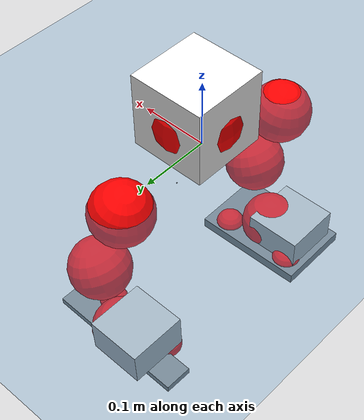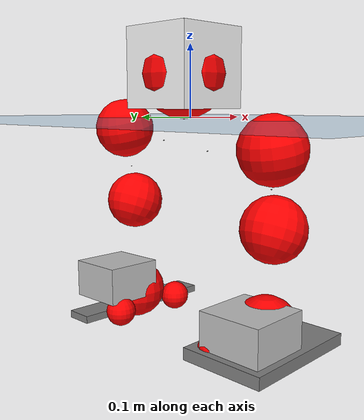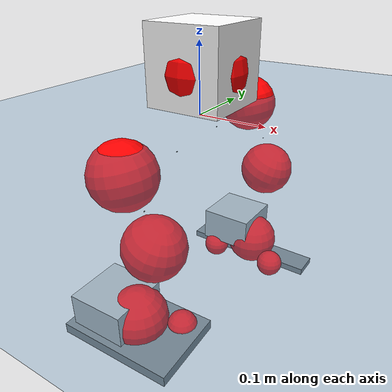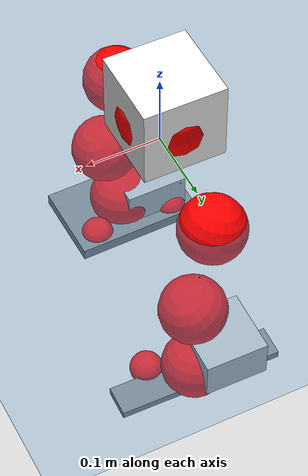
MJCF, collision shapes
<mujoco model="pi_12dof_release_v1">
  <compiler angle="radian" assetdir="assets" balanceinertia="true" inertiafromgeom="false"/>

  <option timestep="0.005" density="1.2" viscosity="2e-05"/>

  <size nkey="1"/>

  <visual>
    <quality shadowsize="8192"/>
    <map shadowclip="0.5"/>
  </visual>

  <default>
    <default class="/">
      <joint armature="0.01" damping="0.01" frictionloss="0.01"/>
      <geom contype="0" conaffinity="0" group="1" solref="-1000 -80"/>
      <site size="0.01 0.005 0.005" group="5"/>
      <general forcelimited="true" biastype="affine" gainprm="20" biasprm="0 -20 -0.5"/>
      <default class="foot">
        <geom size="0.0845 0.036 0.005" type="box" condim="6" group="4" priority="1" friction="0.9 0.2 0.2" solimp="0.015 1 0.005"/>
      </default>
      <default class="reward_collision_sphere">
        <geom group="5" rgba="1 0 0 1"/>
      </default>
    </default>
  </default>

  <asset>
    <texture type="skybox" colorspace="auto" name="//unnamed_texture_0" builtin="gradient" rgb1="0.95 0.95 0.95" rgb2="0.95 0.95 0.95" width="100" height="600"/>
    <texture type="2d" colorspace="auto" name="texplane" builtin="checker" rgb1="0.345 0.575 0.748" rgb2="0.345 0.575 0.748" markrgb="1 1 1" width="512" height="512"/>
    <material name="MatPlane" class="/" texture="texplane" texuniform="true" texrepeat="2 2" specular="0.9"/>
    <mesh name="baselink_1" class="/" file="baselink_1.STL"/>
    <mesh name="r_hip_pitch_link" class="/" file="r_hip_pitch_link.STL"/>
    <mesh name="r_hip_roll_link" class="/" file="r_hip_roll_link.STL"/>
    <mesh name="r_thigh_link" class="/" file="r_thigh_link.STL"/>
    <mesh name="r_calf_link" class="/" file="r_calf_link.STL"/>
    <mesh name="r_ankle_pitch_link" class="/" file="r_ankle_pitch_link.STL"/>
    <mesh name="r_ankle_roll_link" class="/" file="r_ankle_roll_link.STL"/>
    <mesh name="l_hip_pitch_link" class="/" file="l_hip_pitch_link.STL"/>
    <mesh name="l_hip_roll_link" class="/" file="l_hip_roll_link.STL"/>
    <mesh name="l_thigh_link" class="/" file="l_thigh_link.STL"/>
    <mesh name="l_calf_link" class="/" file="l_calf_link.STL"/>
    <mesh name="l_ankle_pitch_link" class="/" file="l_ankle_pitch_link.STL"/>
    <mesh name="l_ankle_roll_link" class="/" file="l_ankle_roll_link.STL"/>
  </asset>

  <worldbody>
    <geom name="floor" class="/" size="100 100 0.125" type="plane" group="0" material="MatPlane"/>
    <light name="toplight_shadow" class="/" pos="0 0 5" dir="0.0990148 0.0990148 -0.990148" type="directional" ambient="0.04 0.04 0.04" diffuse="0.55 0.55 0.55" specular="0.12 0.12 0.12"/>
    <light name="toplight_fill" class="/" pos="0 0 5" dir="0.0990148 0.0990148 -0.990148" type="directional" castshadow="false" ambient="0.04 0.04 0.04" diffuse="0.3 0.3 0.3" specular="0.08 0.08 0.08"/>
    <body name="trunk" pos="-0.000980606 0.0109229 -0.00132659" quat="1 -4.816e-05 1.33993e-05 -8.37821e-05">
      <inertial pos="-0.00274185 0.0115666 0.035624" quat="0.660206 -0.0310261 0.0575383 0.748234" mass="2.96769" diaginertia="0.00427854 0.110549 0.00204891"/>
      <joint name="//unnamed_joint_0" type="free"/>
      <geom name="//unnamed_geom_1" class="/" type="mesh" density="0" rgba="1 1 1 1" mesh="baselink_1"/>
      <geom name="//unnamed_geom_2" class="/" size="0.0552985 0.0552985 0.0552985" pos="0 0 0.0694648" type="box" rgba="1 1 1 1"/>
      <geom name="//unnamed_geom_3" class="reward_collision_sphere" size="0.0608283" pos="0 0 0.0607817"/>
      <site name="imu" class="/" pos="-0.0529308 -0.0410226 0.0545355" size="0.0110597"/>
      <camera name="track" class="/" pos="0 -3.23896 0" quat="0.707107 0.707107 0 0" mode="trackcom"/>
      <camera name="ego_camera" class="/" pos="0.0622591 0 0.156296" quat="-0.5 -0.5 0.5 0.5"/>
      <body name="r_hip_pitch_link" pos="-0.00955216 -0.0528629 -0.0414827" quat="0.992802 -0.00194937 -0.119732 -0.00192181">
        <inertial pos="0.00328659 -0.0918131 -0.00759757" quat="-0.0113232 0.704435 -0.0294925 0.709065" mass="0.567395" diaginertia="4.21001e-05 0.00119505 3.94624e-05"/>
        <joint name="r_hip_pitch_joint" class="/" pos="0 0 0" axis="0.0211068 -0.999578 -0.0199806" stiffness="0.00405779" range="-1.72455 1.40943" armature="0.0112082" damping="0.0241359" frictionloss="0.013264"/>
        <geom name="//unnamed_geom_4" class="/" type="mesh" density="0" rgba="0.75294 0.75294 0.75294 1" mesh="r_hip_pitch_link"/>
        <geom name="//unnamed_geom_5" class="/" size="0.000552985 0.000552985 0.000552985" type="box" rgba="0.75294 0.75294 0.75294 1"/>
        <body name="r_hip_roll_link" pos="0.00113447 -0.107202 0.00645644" quat="0.999988 0.00265311 0.00158637 0.00392617">
          <inertial pos="-0.0114604 -0.0082443 -0.0568662" quat="0.746642 -0.0714712 -0.0937713 0.654695" mass="0.524435" diaginertia="0.000128454 0.00311704 6.67655e-05"/>
          <joint name="r_hip_roll_joint" class="/" pos="0 0 0" axis="-0.998926 0.0097479 -0.045291" stiffness="0.00305017" range="-0.123375 0.26451" armature="0.0167041" damping="0.0978993" frictionloss="0.0115217"/>
          <geom name="//unnamed_geom_6" class="/" type="mesh" density="0" rgba="0.75294 0.75294 0.75294 1" mesh="r_hip_roll_link"/>
          <geom name="//unnamed_geom_7" class="/" size="0.000552985 0.000552985 0.000552985" type="box" rgba="0.75294 0.75294 0.75294 1"/>
          <geom name="//unnamed_geom_8" class="reward_collision_sphere" size="0.0442388"/>
          <body name="r_thigh_link" pos="0.00481172 0.0134219 -0.0528271" quat="0.999993 0.00105313 -0.0037116 0.000234072">
            <inertial pos="-0.00920557 0.00190613 -0.026588" quat="0.740425 0.672137 -0.00178465 0.000267649" mass="0.158056" diaginertia="5.65033e-05 0.000880886 3.40809e-05"/>
            <joint name="r_thigh_joint" class="/" pos="0 0 0" axis="0.00337819 0.00518769 -0.999981" stiffness="0.0420018" range="-0.104221 0.58876" armature="0.0146182" damping="0" frictionloss="0.0114166"/>
            <geom name="//unnamed_geom_9" class="/" type="mesh" density="0" rgba="0.75294 0.75294 0.75294 1" mesh="r_thigh_link"/>
            <geom name="//unnamed_geom_10" class="/" size="0.000552985 0.000552985 0.000552985" type="box" rgba="0.75294 0.75294 0.75294 1"/>
            <body name="r_calf_link" pos="-0.00297347 0.00277306 -0.0537664" quat="0.947859 -0.000331793 0.318691 -0.000336044">
              <inertial pos="0.00538493 -0.00549641 -0.0643274" quat="0.999979 -0.00481283 -0.00264118 0.00331318" mass="1.25313" diaginertia="0.00144986 0.0458626 7.28956e-05"/>
              <joint name="r_calf_joint" class="/" pos="0 0 0" axis="-0.00355848 -0.999169 0.0406045" stiffness="0.0365149" range="-1.95909 0.494785" armature="0.0133018" damping="0.0154745" frictionloss="0.00698548"/>
              <geom name="//unnamed_geom_11" class="/" type="mesh" density="0" rgba="0.75294 0.75294 0.75294 1" mesh="r_calf_link"/>
              <geom name="//unnamed_geom_12" class="/" size="0.000552985 0.000552985 0.000552985" type="box" rgba="0.75294 0.75294 0.75294 1"/>
              <geom name="//unnamed_geom_13" class="reward_collision_sphere" size="0.0442388"/>
              <body name="r_ankle_pitch_link" pos="-0.0136868 -0.0149407 -0.129831" quat="0.979485 -0.00134414 -0.201507 0.00178163">
                <inertial pos="0.0111925 0.0206246 0.00069024" quat="0.0263126 0.730828 -0.0115702 0.681956" mass="0.177633" diaginertia="0.000102016 0.00212608 5.41955e-05"/>
                <joint name="r_ankle_pitch_joint" class="/" pos="0 0 0" axis="0.0682989 -0.997623 0.00910916" range="-1.44152 0.228744" armature="0.0107541" damping="0" frictionloss="0.0142089"/>
                <geom name="//unnamed_geom_14" class="/" type="mesh" density="0" rgba="0.75294 0.75294 0.75294 1" mesh="r_ankle_pitch_link"/>
                <geom name="//unnamed_geom_15" class="/" size="0.0431328 0.0442388 0.0276492" type="box" rgba="0.75294 0.75294 0.75294 1"/>
                <body name="r_ankle_roll_link" pos="0.0764165 0.0035908 0.00912193" quat="0.999981 0.00442783 0.00309923 0.00289249">
                  <inertial pos="-0.025556 0.00181262 -0.0222781" quat="0.559333 0.42441 0.470225 0.534706" mass="0.692776" diaginertia="0.000427282 0.0116817 0.000131504"/>
                  <joint name="r_ankle_roll_joint" class="/" pos="0 0 0" axis="-0.999998 0.000993269 -0.00143601" range="0.139258 0.165343" armature="0.0116159" damping="0.021049" frictionloss="0.0152369"/>
                  <geom name="//unnamed_geom_16" class="/" type="mesh" density="0" rgba="0.75294 0.75294 0.75294 1" mesh="r_ankle_roll_link"/>
                  <geom name="//unnamed_geom_17" class="/" type="mesh" rgba="0.75294 0.75294 0.75294 1" mesh="r_ankle_roll_link"/>
                  <geom name="right_foot" class="foot" size="0.0872776 0.057422 0.00790831" pos="-0.0423362 0 -0.0382056"/>
                  <geom name="//unnamed_geom_19" class="reward_collision_sphere" size="0.0442388" pos="-0.0415061 0 -0.0173662"/>
                  <geom name="//unnamed_geom_20" class="reward_collision_sphere" size="0.0221194" pos="0.0124518 0.0323896 -0.0347324"/>
                  <geom name="//unnamed_geom_21" class="reward_collision_sphere" size="0.0221194" pos="-0.0996146 0.0323896 -0.0347324"/>
                  <site name="right_foot" class="foot" pos="-0.0423362 0 -0.0382056" size="0.0110597"/>
                </body>
              </body>
            </body>
          </body>
        </body>
      </body>
      <body name="l_hip_pitch_link" pos="-0.00146654 0.0399534 -0.0311088" quat="0.992142 -0.0024026 -0.125089 0.00112223">
        <inertial pos="0.00174642 0.0997593 -0.0081712" quat="-0.0241295 0.700553 0.0461958 0.711694" mass="0.45681" diaginertia="4.71846e-05 0.00108279 4.52456e-05"/>
        <joint name="l_hip_pitch_joint" class="/" pos="0 0 0" axis="-0.0122687 0.999893 -0.00802101" range="-1.23531 1.75505" armature="0.0119015" damping="0.0623942" frictionloss="0.00579903"/>
        <geom name="//unnamed_geom_22" class="/" type="mesh" density="0" rgba="0.75294 0.75294 0.75294 1" mesh="l_hip_pitch_link"/>
        <geom name="//unnamed_geom_23" class="/" size="0.000552985 0.000552985 0.000552985" type="box" rgba="0.75294 0.75294 0.75294 1"/>
        <body name="l_hip_roll_link" pos="0.00884569 0.09357 0.0137785" quat="0.999998 0.000874726 0.00131366 -0.000739371">
          <inertial pos="-6.50585e-05 0.00182972 -0.0388753" quat="0.694545 -0.103144 -0.108685 0.703673" mass="0.394211" diaginertia="0.000128333 0.00264151 5.98525e-05"/>
          <joint name="l_hip_roll_joint" class="/" pos="0 0 0" axis="-0.998433 0.0533068 -0.017004" stiffness="0.00566872" range="-0.224814 0.0891056" armature="0.00465996" damping="0" frictionloss="0.0078677"/>
          <geom name="//unnamed_geom_24" class="/" type="mesh" density="0" rgba="0.75294 0.75294 0.75294 1" mesh="l_hip_roll_link"/>
          <geom name="//unnamed_geom_25" class="/" size="0.000552985 0.000552985 0.000552985" type="box" rgba="0.75294 0.75294 0.75294 1"/>
          <geom name="//unnamed_geom_26" class="reward_collision_sphere" size="0.0442388"/>
          <body name="l_thigh_link" pos="0.00849047 0.0152314 -0.0659805" quat="0.999998 -0.000784148 0.0011167 -0.0013749">
            <inertial pos="0.00146539 -0.00215635 -0.0391399" quat="0.677187 0.73581 0.000707674 0.00133721" mass="0.121105" diaginertia="3.7124e-05 0.000947757 2.58309e-05"/>
            <joint name="l_thigh_joint" class="/" pos="0 0 0" axis="0.00451492 -0.000195736 -0.99999" stiffness="0.00372782" range="-0.648364 0.309815" armature="0.0157764" damping="0.00333591" frictionloss="0.0104689"/>
            <geom name="//unnamed_geom_27" class="/" type="mesh" density="0" rgba="0.75294 0.75294 0.75294 1" mesh="l_thigh_link"/>
            <geom name="//unnamed_geom_28" class="/" size="0.000552985 0.000552985 0.000552985" type="box" rgba="0.75294 0.75294 0.75294 1"/>
            <body name="l_calf_link" pos="-0.00513107 0.00251555 -0.0568236" quat="0.947702 -0.00597631 0.319099 -0.00130222">
              <inertial pos="-0.00403932 -0.00580519 -0.0512275" quat="0.999761 0.00526534 -0.0194671 0.00842344" mass="0.982064" diaginertia="0.00107913 0.0324297 6.42853e-05"/>
              <joint name="l_calf_joint" class="/" pos="0 0 0" axis="-0.0259264 0.998918 -0.0385984" stiffness="0.0263928" range="-0.724276 1.77566" armature="0.00876478" damping="0" frictionloss="0.00804413"/>
              <geom name="//unnamed_geom_29" class="/" type="mesh" density="0" rgba="0.75294 0.75294 0.75294 1" mesh="l_calf_link"/>
              <geom name="//unnamed_geom_30" class="/" size="0.000552985 0.000552985 0.000552985" type="box" rgba="0.75294 0.75294 0.75294 1"/>
              <geom name="//unnamed_geom_31" class="reward_collision_sphere" size="0.0442388"/>
              <body name="l_ankle_pitch_link" pos="0.00104156 -0.00993809 -0.1279" quat="0.980471 -0.00151018 -0.19657 -0.00590461">
                <inertial pos="0.00246575 0.0118517 -0.00852767" quat="-0.000659713 0.719269 0.00492898 0.694714" mass="0.262052" diaginertia="0.00013222 0.00273342 6.51963e-05"/>
                <joint name="l_ankle_pitch_joint" class="/" pos="0 0 0" axis="0.0132629 0.999819 0.0136378" stiffness="0.0278569" range="-0.283264 1.12267" armature="0.0101168" damping="0" frictionloss="0.010852"/>
                <geom name="//unnamed_geom_32" class="/" type="mesh" density="0" rgba="0.75294 0.75294 0.75294 1" mesh="l_ankle_pitch_link"/>
                <geom name="//unnamed_geom_33" class="/" size="0.0431328 0.0442388 0.0276492" type="box" rgba="0.75294 0.75294 0.75294 1"/>
                <body name="l_ankle_roll_link" pos="0.078437 -0.00378579 -0.00697386" quat="0.999994 0.000545578 -0.00127264 -0.00317635">
                  <inertial pos="-0.0353124 -0.00176301 -0.00799665" quat="0.574714 0.408153 0.425742 0.567325" mass="0.713813" diaginertia="0.000374978 0.0122458 0.000134982"/>
                  <joint name="l_ankle_roll_joint" class="/" pos="0 0 0" axis="-0.99725 0.0602527 -0.0431407" stiffness="0.0316277" range="-0.446659 0.364135" armature="0.00415771" damping="0" frictionloss="0.0177692"/>
                  <geom name="//unnamed_geom_34" class="/" type="mesh" density="0" rgba="0.75294 0.75294 0.75294 1" mesh="l_ankle_roll_link"/>
                  <geom name="//unnamed_geom_35" class="/" type="mesh" rgba="0.75294 0.75294 0.75294 1" mesh="l_ankle_roll_link"/>
                  <geom name="left_foot" class="foot" size="0.112371 0.0210946 0.00529181" pos="-0.0423362 0 -0.0382056"/>
                  <geom name="//unnamed_geom_37" class="reward_collision_sphere" size="0.0442388" pos="-0.0415061 0 -0.0173662"/>
                  <geom name="//unnamed_geom_38" class="reward_collision_sphere" size="0.0221194" pos="0.0124518 -0.0323896 -0.0347324"/>
                  <geom name="//unnamed_geom_39" class="reward_collision_sphere" size="0.0221194" pos="-0.0996146 -0.0323896 -0.0347324"/>
                  <site name="left_foot" class="foot" pos="-0.0423362 0 -0.0382056" size="0.0110597"/>
                </body>
              </body>
            </body>
          </body>
        </body>
      </body>
    </body>
  </worldbody>

  <contact>
    <pair class="/" geom1="floor" geom2="right_foot" name="//unnamed_contact_1"/>
    <pair class="/" geom1="floor" geom2="left_foot" name="//unnamed_contact_0"/>
  </contact>

  <actuator>
    <general name="r_hip_pitch_joint" class="/" joint="r_hip_pitch_joint" forcerange="-26.9728 26.9728" gainprm="26.8306" biasprm="0 -26.8306 -0.626603"/>
    <general name="r_hip_roll_joint" class="/" joint="r_hip_roll_joint" forcerange="-24.1371 24.1371" gainprm="26.8306" biasprm="0 -26.8306 -0.626603"/>
    <general name="r_thigh_joint" class="/" joint="r_thigh_joint" forcerange="-14.9127 14.9127" gainprm="26.8306" biasprm="0 -26.8306 -0.626603"/>
    <general name="r_calf_joint" class="/" joint="r_calf_joint" forcerange="-34.1913 34.1913" gainprm="26.8306" biasprm="0 -26.8306 -0.626603"/>
    <general name="r_ankle_pitch_joint" class="/" joint="r_ankle_pitch_joint" forcerange="-11.3488 11.3488" gainprm="26.8306" biasprm="0 -26.8306 -0.626603"/>
    <general name="r_ankle_roll_joint" class="/" joint="r_ankle_roll_joint" forcerange="-11.2696 11.2696" gainprm="26.8306" biasprm="0 -26.8306 -0.626603"/>
    <general name="l_hip_pitch_joint" class="/" joint="l_hip_pitch_joint" forcerange="-9.87625 9.87625" gainprm="26.8306" biasprm="0 -26.8306 -0.626603"/>
    <general name="l_hip_roll_joint" class="/" joint="l_hip_roll_joint" forcerange="-31.5537 31.5537" gainprm="26.8306" biasprm="0 -26.8306 -0.626603"/>
    <general name="l_thigh_joint" class="/" joint="l_thigh_joint" forcerange="-27.4369 27.4369" gainprm="26.8306" biasprm="0 -26.8306 -0.626603"/>
    <general name="l_calf_joint" class="/" joint="l_calf_joint" forcerange="-11.3343 11.3343" gainprm="26.8306" biasprm="0 -26.8306 -0.626603"/>
    <general name="l_ankle_pitch_joint" class="/" joint="l_ankle_pitch_joint" forcerange="-11.3026 11.3026" gainprm="26.8306" biasprm="0 -26.8306 -0.626603"/>
    <general name="l_ankle_roll_joint" class="/" joint="l_ankle_roll_joint" forcerange="-15.0681 15.0681" gainprm="26.8306" biasprm="0 -26.8306 -0.626603"/>
  </actuator>

  <sensor>
    <gyro site="imu" name="imu_angular_velocity"/>
    <velocimeter site="imu" name="imu_linear_velocity"/>
    <framelinvel objtype="site" objname="left_foot" name="left_foot_global_linear_velocity"/>
    <framelinvel objtype="site" objname="right_foot" name="right_foot_global_linear_velocity"/>
  </sensor>

  <keyframe>
    <key name="home" qpos="0 0 0.291 1 0 0 0 0.4 0 0 -0.8 0.4 0 -0.4 0 0 0.8 -0.4 0"/>
  </keyframe>
</mujoco>
